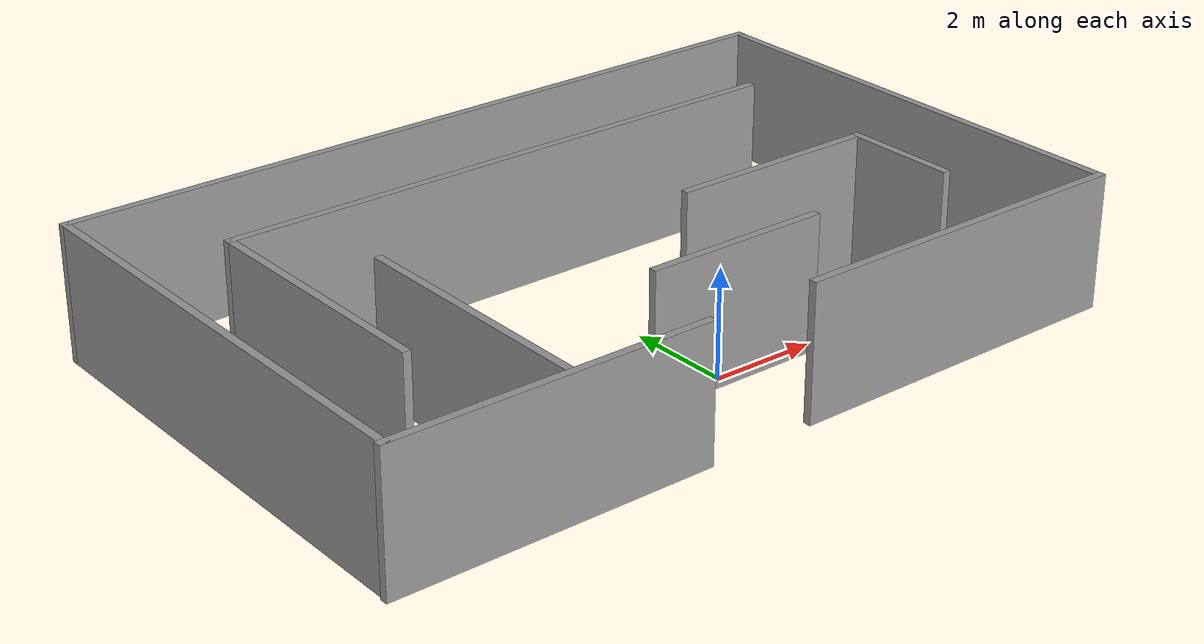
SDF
<?xml version='1.0'?>
<sdf version='1.7'>
  <model name='maze-6'>
    <pose>-0.548784 2.53941 0 0 -0 0</pose>
    <link name='Wall_10'>
      <collision name='Wall_10_Collision'>
        <geometry>
          <box>
            <size>6.75 0.15 2.5</size>
          </box>
        </geometry>
        <pose>0 0 1.25 0 -0 0</pose>
      </collision>
      <visual name='Wall_10_Visual'>
        <pose>0 0 1.25 0 -0 0</pose>
        <geometry>
          <box>
            <size>6.75 0.15 2.5</size>
          </box>
        </geometry>
        <material>
          <script>
            <uri>file://media/materials/scripts/gazebo.material</uri>
            <name>Gazebo/Grey</name>
          </script>
          <ambient>1 1 1 1</ambient>
        </material>
        <meta>
          <layer>0</layer>
        </meta>
      </visual>
      <pose>4.00176 -4.55 0 0 -0 3.14159</pose>
    </link>
    <link name='Wall_12'>
      <collision name='Wall_12_Collision'>
        <geometry>
          <box>
            <size>9.25 0.15 2.5</size>
          </box>
        </geometry>
        <pose>0 0 1.25 0 -0 0</pose>
      </collision>
      <visual name='Wall_12_Visual'>
        <pose>0 0 1.25 0 -0 0</pose>
        <geometry>
          <box>
            <size>9.25 0.15 2.5</size>
          </box>
        </geometry>
        <material>
          <script>
            <uri>file://media/materials/scripts/gazebo.material</uri>
            <name>Gazebo/Grey</name>
          </script>
          <ambient>1 1 1 1</ambient>
        </material>
        <meta>
          <layer>0</layer>
        </meta>
      </visual>
      <pose>7.30175 -0 0 0 -0 1.5708</pose>
    </link>
    <link name='Wall_14'>
      <collision name='Wall_14_Collision'>
        <geometry>
          <box>
            <size>9.25 0.15 2.5</size>
          </box>
        </geometry>
        <pose>0 0 1.25 0 -0 0</pose>
      </collision>
      <visual name='Wall_14_Visual'>
        <pose>0 0 1.25 0 -0 0</pose>
        <geometry>
          <box>
            <size>9.25 0.15 2.5</size>
          </box>
        </geometry>
        <material>
          <script>
            <uri>file://media/materials/scripts/gazebo.material</uri>
            <name>Gazebo/Grey</name>
          </script>
          <ambient>1 1 1 1</ambient>
        </material>
        <meta>
          <layer>0</layer>
        </meta>
      </visual>
      <pose>-7.28241 -0 0 0 -0 -1.5708</pose>
    </link>
    <link name='Wall_15'>
      <collision name='Wall_15_Collision'>
        <geometry>
          <box>
            <size>6 0.15 2.5</size>
          </box>
        </geometry>
        <pose>0 0 1.25 0 -0 0</pose>
      </collision>
      <visual name='Wall_15_Visual'>
        <pose>0 0 1.25 0 -0 0</pose>
        <geometry>
          <box>
            <size>6 0.15 2.5</size>
          </box>
        </geometry>
        <material>
          <script>
            <uri>file://media/materials/scripts/gazebo.material</uri>
            <name>Gazebo/Grey</name>
          </script>
          <ambient>1 1 1 1</ambient>
        </material>
        <meta>
          <layer>0</layer>
        </meta>
      </visual>
      <pose>-4.39259 -4.55 0 0 -0 0</pose>
    </link>
    <link name='Wall_24'>
      <collision name='Wall_24_Collision'>
        <geometry>
          <box>
            <size>11.25 0.15 2.5</size>
          </box>
        </geometry>
        <pose>0 0 1.25 0 -0 0</pose>
      </collision>
      <visual name='Wall_24_Visual'>
        <pose>0 0 1.25 0 -0 0</pose>
        <geometry>
          <box>
            <size>11.25 0.15 2.5</size>
          </box>
        </geometry>
        <material>
          <script>
            <uri>file://media/materials/scripts/gazebo.material</uri>
            <name>Gazebo/Grey</name>
          </script>
          <ambient>1 1 1 1</ambient>
        </material>
        <meta>
          <layer>0</layer>
        </meta>
      </visual>
      <pose>0.007834 2.33362 0 0 -0 3.14159</pose>
    </link>
    <link name='Wall_25'>
      <collision name='Wall_25_Collision'>
        <geometry>
          <box>
            <size>5 0.15 2.5</size>
          </box>
        </geometry>
        <pose>0 0 1.25 0 -0 0</pose>
      </collision>
      <visual name='Wall_25_Visual'>
        <pose>0 0 1.25 0 -0 0</pose>
        <geometry>
          <box>
            <size>5 0.15 2.5</size>
          </box>
        </geometry>
        <material>
          <script>
            <uri>file://media/materials/scripts/gazebo.material</uri>
            <name>Gazebo/Grey</name>
          </script>
          <ambient>1 1 1 1</ambient>
        </material>
        <meta>
          <layer>0</layer>
        </meta>
      </visual>
      <pose>-5.54217 -0.091377 0 0 -0 -1.5708</pose>
    </link>
    <link name='Wall_27'>
      <collision name='Wall_27_Collision'>
        <geometry>
          <box>
            <size>5 0.15 2.5</size>
          </box>
        </geometry>
        <pose>0 0 1.25 0 -0 0</pose>
      </collision>
      <visual name='Wall_27_Visual'>
        <pose>0 0 1.25 0 -0 0</pose>
        <geometry>
          <box>
            <size>5 0.15 2.5</size>
          </box>
        </geometry>
        <material>
          <script>
            <uri>file://media/materials/scripts/gazebo.material</uri>
            <name>Gazebo/Grey</name>
          </script>
          <ambient>1 1 1 1</ambient>
        </material>
        <meta>
          <layer>0</layer>
        </meta>
      </visual>
      <pose>-4.0475 -2.12418 0 0 -0 1.5708</pose>
    </link>
    <link name='Wall_29'>
      <collision name='Wall_29_Collision'>
        <geometry>
          <box>
            <size>2.25 0.15 2.5</size>
          </box>
        </geometry>
        <pose>0 0 1.25 0 -0 0</pose>
      </collision>
      <visual name='Wall_29_Visual'>
        <pose>0 0 1.25 0 -0 0</pose>
        <geometry>
          <box>
            <size>2.25 0.15 2.5</size>
          </box>
        </geometry>
        <material>
          <script>
            <uri>file://media/materials/scripts/gazebo.material</uri>
            <name>Gazebo/Grey</name>
          </script>
          <ambient>1 1 1 1</ambient>
        </material>
        <meta>
          <layer>0</layer>
        </meta>
      </visual>
      <pose>5.37933 -1.7298 0 0 -0 -1.5708</pose>
    </link>
    <link name='Wall_3'>
      <collision name='Wall_3_Collision'>
        <geometry>
          <box>
            <size>3.5 0.15 2.5</size>
          </box>
        </geometry>
        <pose>0 0 1.25 0 -0 0</pose>
      </collision>
      <visual name='Wall_3_Visual'>
        <pose>0 0 1.25 0 -0 0</pose>
        <geometry>
          <box>
            <size>3.5 0.15 2.5</size>
          </box>
        </geometry>
        <material>
          <script>
            <uri>file://media/materials/scripts/gazebo.material</uri>
            <name>Gazebo/Grey</name>
          </script>
          <ambient>1 1 1 1</ambient>
        </material>
        <meta>
          <layer>0</layer>
        </meta>
      </visual>
      <pose>0.726556 -2.70488 0 0 -0 0</pose>
    </link>
    <link name='Wall_31'>
      <collision name='Wall_31_Collision'>
        <geometry>
          <box>
            <size>14.75 0.15 2.5</size>
          </box>
        </geometry>
        <pose>0 0 1.25 0 -0 0</pose>
      </collision>
      <visual name='Wall_31_Visual'>
        <pose>0 0 1.25 0 -0 0</pose>
        <geometry>
          <box>
            <size>14.75 0.15 2.5</size>
          </box>
        </geometry>
        <material>
          <script>
            <uri>file://media/materials/scripts/gazebo.material</uri>
            <name>Gazebo/Grey</name>
          </script>
          <ambient>1 1 1 1</ambient>
        </material>
        <meta>
          <layer>0</layer>
        </meta>
      </visual>
      <pose>0.01759 4.55 0 0 -0 0</pose>
    </link>
    <link name='Wall_5'>
      <collision name='Wall_5_Collision'>
        <geometry>
          <box>
            <size>4.101 0.15 2.5</size>
          </box>
        </geometry>
        <pose>0 0 1.25 0 -0 0</pose>
      </collision>
      <visual name='Wall_5_Visual'>
        <pose>0 0 1.25 0 -0 0</pose>
        <geometry>
          <box>
            <size>4.101 0.15 2.5</size>
          </box>
        </geometry>
        <material>
          <script>
            <uri>file://media/materials/scripts/gazebo.material</uri>
            <name>Gazebo/Grey</name>
          </script>
          <ambient>1 1 1 1</ambient>
        </material>
        <meta>
          <layer>0</layer>
        </meta>
      </visual>
      <pose>3.40383 -0.706401 0 0 -0 0</pose>
    </link>
    <static>1</static>
  </model>
</sdf>
